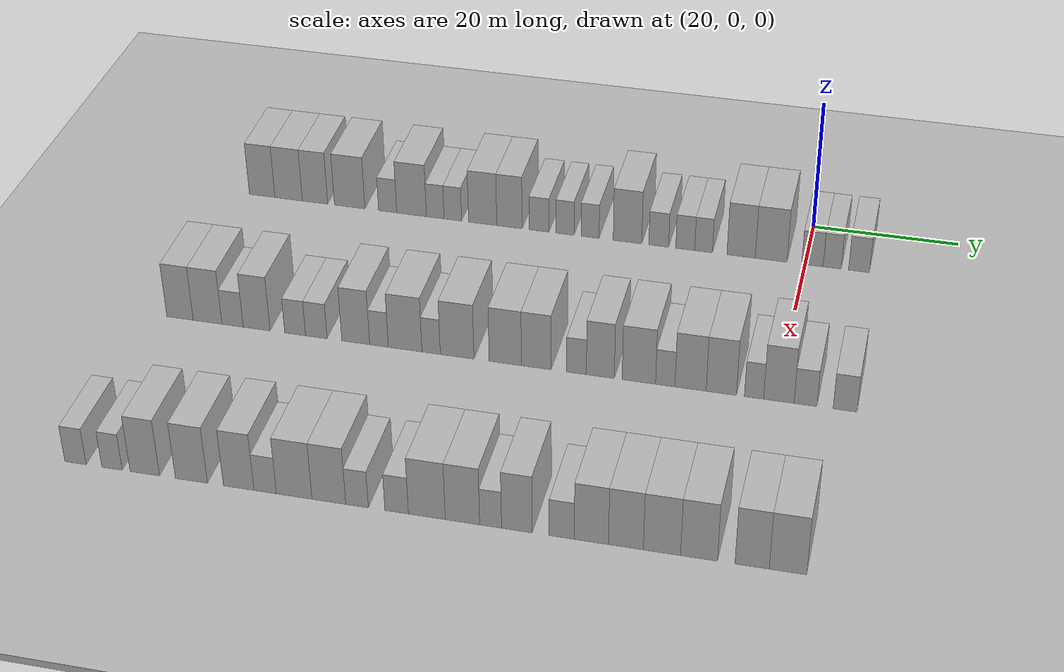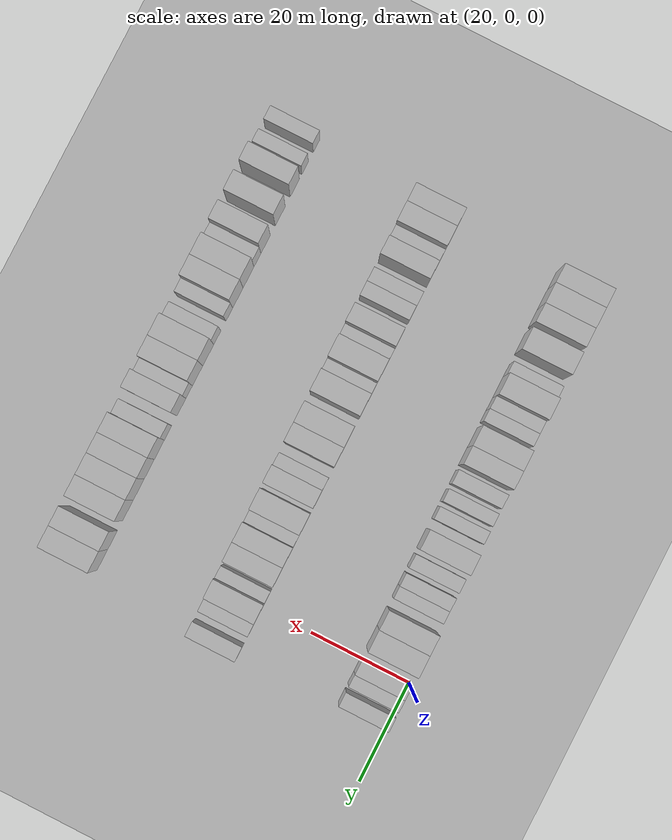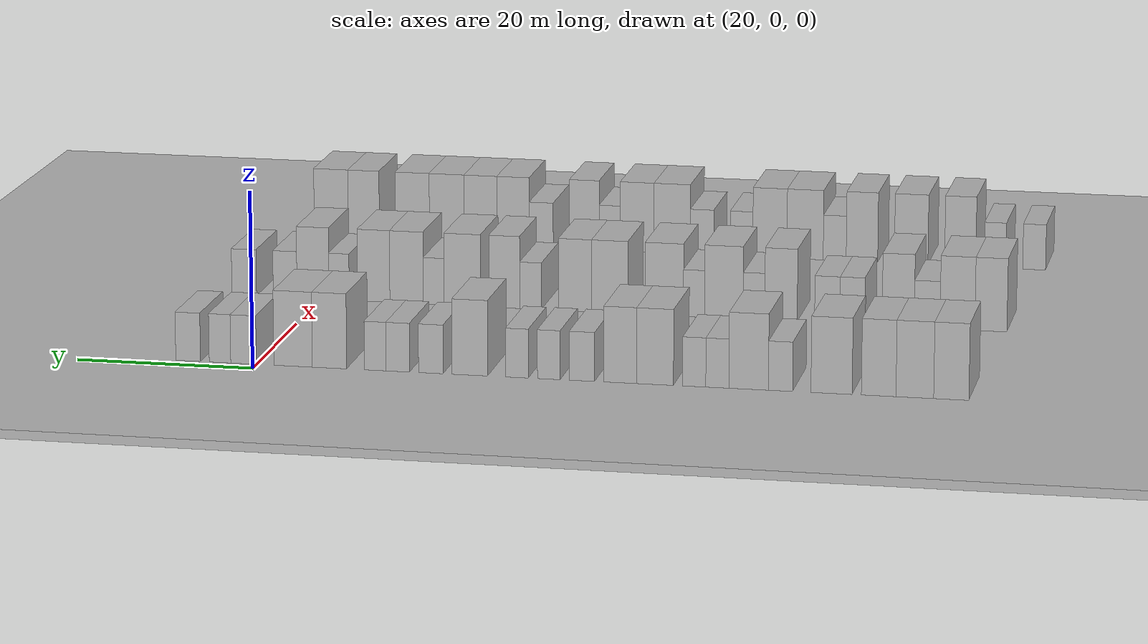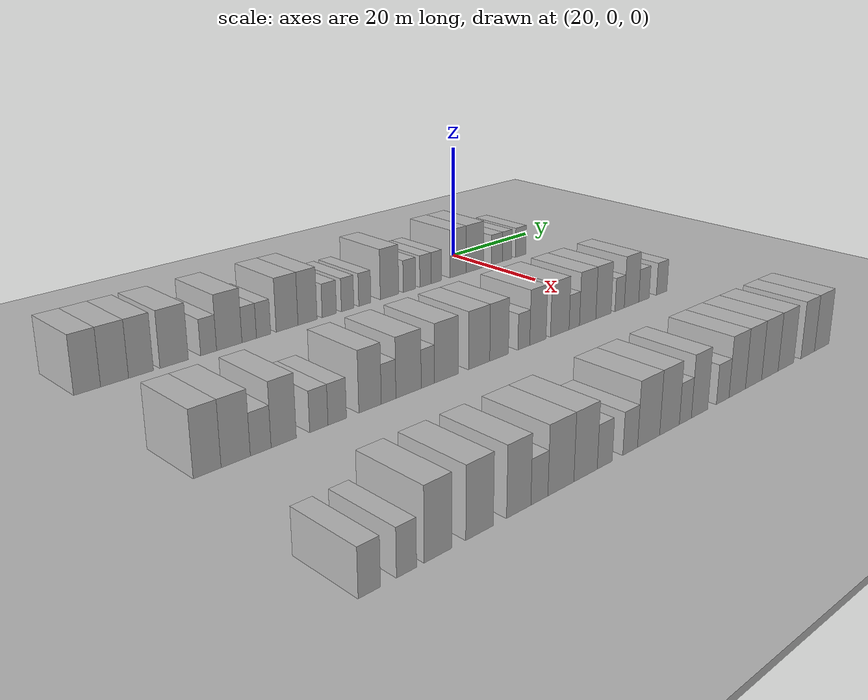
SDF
<sdf version="1.6">
 <world name="default">
  <include><name>ground_plane_1</name><uri>model://HANNAS_ground_plane</uri></include>
  <include>
   <name>ground_plane_2</name>
   <uri>model://HANNAS_ground_plane</uri>
   <pose>100 0 0  0 0 0</pose>
  </include>
  <model name="building_41">
   <static>1</static>
   <pose>25.0000 -77.4432 0 0.000000 0.000000 0.000000</pose>
   <link name="link">
    <pose>0 0 4.50 0 0 0</pose>
    <collision name="collision"><geometry><box><size>10.0000 3.8039 9.0000</size></box></geometry></collision>
    <visual name="visual">
     <cast_shadows>0</cast_shadows>
     <geometry><box><size>10.0000 3.8039 9.0000</size></box></geometry>
     <material>
      <script>
       <uri>model://HANNAS_wall/materials/scripts</uri>
       <uri>model://HANNAS_wall/materials/textures</uri>
       <name>vrc/HANNAS_wall</name>
      </script>
     </material>
    </visual>
   </link>
  </model>
  <model name="building_42">
   <static>1</static>
   <pose>25.0000 -73.4997 0 0.000000 0.000000 0.000000</pose>
   <link name="link">
    <pose>0 0 4.50 0 0 0</pose>
    <collision name="collision"><geometry><box><size>10.0000 4.0831 9.0000</size></box></geometry></collision>
    <visual name="visual">
     <cast_shadows>0</cast_shadows>
     <geometry><box><size>10.0000 4.0831 9.0000</size></box></geometry>
     <material>
      <script>
       <uri>model://HANNAS_wall/materials/scripts</uri>
       <uri>model://HANNAS_wall/materials/textures</uri>
       <name>vrc/HANNAS_wall</name>
      </script>
     </material>
    </visual>
   </link>
  </model>
  <model name="building_43">
   <static>1</static>
   <pose>25.0000 -69.5776 0 0.000000 0.000000 0.000000</pose>
   <link name="link">
    <pose>0 0 4.50 0 0 0</pose>
    <collision name="collision"><geometry><box><size>10.0000 3.7611 9.0000</size></box></geometry></collision>
    <visual name="visual">
     <cast_shadows>0</cast_shadows>
     <geometry><box><size>10.0000 3.7611 9.0000</size></box></geometry>
     <material>
      <script>
       <uri>model://HANNAS_wall/materials/scripts</uri>
       <uri>model://HANNAS_wall/materials/textures</uri>
       <name>vrc/HANNAS_wall</name>
      </script>
     </material>
    </visual>
   </link>
  </model>
  <model name="building_44">
   <static>1</static>
   <pose>25.0000 -64.4506 0 0.000000 0.000000 0.000000</pose>
   <link name="link">
    <pose>0 0 4.50 0 0 0</pose>
    <collision name="collision"><geometry><box><size>10.0000 4.4929 9.0000</size></box></geometry></collision>
    <visual name="visual">
     <cast_shadows>0</cast_shadows>
     <geometry><box><size>10.0000 4.4929 9.0000</size></box></geometry>
     <material>
      <script>
       <uri>model://HANNAS_wall/materials/scripts</uri>
       <uri>model://HANNAS_wall/materials/textures</uri>
       <name>vrc/HANNAS_wall</name>
      </script>
     </material>
    </visual>
   </link>
  </model>
  <model name="building_45">
   <static>1</static>
   <pose>25.0000 -58.8808 0 0.000000 0.000000 0.000000</pose>
   <link name="link">
    <pose>0 0 3.00 0 0 0</pose>
    <collision name="collision"><geometry><box><size>10.0000 2.6467 6.0000</size></box></geometry></collision>
    <visual name="visual">
     <cast_shadows>0</cast_shadows>
     <geometry><box><size>10.0000 2.6467 6.0000</size></box></geometry>
     <material>
      <script>
       <uri>model://HANNAS_wall/materials/scripts</uri>
       <uri>model://HANNAS_wall/materials/textures</uri>
       <name>vrc/HANNAS_wall</name>
      </script>
     </material>
    </visual>
   </link>
  </model>
  <model name="building_46">
   <static>1</static>
   <pose>25.0000 -55.3931 0 0.000000 0.000000 0.000000</pose>
   <link name="link">
    <pose>0 0 4.50 0 0 0</pose>
    <collision name="collision"><geometry><box><size>10.0000 4.3287 9.0000</size></box></geometry></collision>
    <visual name="visual">
     <cast_shadows>0</cast_shadows>
     <geometry><box><size>10.0000 4.3287 9.0000</size></box></geometry>
     <material>
      <script>
       <uri>model://HANNAS_wall/materials/scripts</uri>
       <uri>model://HANNAS_wall/materials/textures</uri>
       <name>vrc/HANNAS_wall</name>
      </script>
     </material>
    </visual>
   </link>
  </model>
  <model name="building_47">
   <static>1</static>
   <pose>25.0000 -51.9567 0 0.000000 0.000000 0.000000</pose>
   <link name="link">
    <pose>0 0 3.00 0 0 0</pose>
    <collision name="collision"><geometry><box><size>10.0000 2.5442 6.0000</size></box></geometry></collision>
    <visual name="visual">
     <cast_shadows>0</cast_shadows>
     <geometry><box><size>10.0000 2.5442 6.0000</size></box></geometry>
     <material>
      <script>
       <uri>model://HANNAS_wall/materials/scripts</uri>
       <uri>model://HANNAS_wall/materials/textures</uri>
       <name>vrc/HANNAS_wall</name>
      </script>
     </material>
    </visual>
   </link>
  </model>
  <model name="building_48">
   <static>1</static>
   <pose>25.0000 -49.4070 0 0.000000 0.000000 0.000000</pose>
   <link name="link">
    <pose>0 0 3.00 0 0 0</pose>
    <collision name="collision"><geometry><box><size>10.0000 2.5553 6.0000</size></box></geometry></collision>
    <visual name="visual">
     <cast_shadows>0</cast_shadows>
     <geometry><box><size>10.0000 2.5553 6.0000</size></box></geometry>
     <material>
      <script>
       <uri>model://HANNAS_wall/materials/scripts</uri>
       <uri>model://HANNAS_wall/materials/textures</uri>
       <name>vrc/HANNAS_wall</name>
      </script>
     </material>
    </visual>
   </link>
  </model>
  <model name="building_49">
   <static>1</static>
   <pose>25.0000 -45.0971 0 0.000000 0.000000 0.000000</pose>
   <link name="link">
    <pose>0 0 4.50 0 0 0</pose>
    <collision name="collision"><geometry><box><size>10.0000 4.0646 9.0000</size></box></geometry></collision>
    <visual name="visual">
     <cast_shadows>0</cast_shadows>
     <geometry><box><size>10.0000 4.0646 9.0000</size></box></geometry>
     <material>
      <script>
       <uri>model://HANNAS_wall/materials/scripts</uri>
       <uri>model://HANNAS_wall/materials/textures</uri>
       <name>vrc/HANNAS_wall</name>
      </script>
     </material>
    </visual>
   </link>
  </model>
  <model name="building_50">
   <static>1</static>
   <pose>25.0000 -41.2417 0 0.000000 0.000000 0.000000</pose>
   <link name="link">
    <pose>0 0 4.50 0 0 0</pose>
    <collision name="collision"><geometry><box><size>10.0000 3.6462 9.0000</size></box></geometry></collision>
    <visual name="visual">
     <cast_shadows>0</cast_shadows>
     <geometry><box><size>10.0000 3.6462 9.0000</size></box></geometry>
     <material>
      <script>
       <uri>model://HANNAS_wall/materials/scripts</uri>
       <uri>model://HANNAS_wall/materials/textures</uri>
       <name>vrc/HANNAS_wall</name>
      </script>
     </material>
    </visual>
   </link>
  </model>
  <model name="building_51">
   <static>1</static>
   <pose>25.0000 -37.0096 0 0.000000 0.000000 0.000000</pose>
   <link name="link">
    <pose>0 0 3.00 0 0 0</pose>
    <collision name="collision"><geometry><box><size>10.0000 2.8180 6.0000</size></box></geometry></collision>
    <visual name="visual">
     <cast_shadows>0</cast_shadows>
     <geometry><box><size>10.0000 2.8180 6.0000</size></box></geometry>
     <material>
      <script>
       <uri>model://HANNAS_wall/materials/scripts</uri>
       <uri>model://HANNAS_wall/materials/textures</uri>
       <name>vrc/HANNAS_wall</name>
      </script>
     </material>
    </visual>
   </link>
  </model>
  <model name="building_52">
   <static>1</static>
   <pose>25.0000 -33.3293 0 0.000000 0.000000 0.000000</pose>
   <link name="link">
    <pose>0 0 3.00 0 0 0</pose>
    <collision name="collision"><geometry><box><size>10.0000 2.5426 6.0000</size></box></geometry></collision>
    <visual name="visual">
     <cast_shadows>0</cast_shadows>
     <geometry><box><size>10.0000 2.5426 6.0000</size></box></geometry>
     <material>
      <script>
       <uri>model://HANNAS_wall/materials/scripts</uri>
       <uri>model://HANNAS_wall/materials/textures</uri>
       <name>vrc/HANNAS_wall</name>
      </script>
     </material>
    </visual>
   </link>
  </model>
  <model name="building_53">
   <static>1</static>
   <pose>25.0000 -29.7868 0 0.000000 0.000000 0.000000</pose>
   <link name="link">
    <pose>0 0 3.00 0 0 0</pose>
    <collision name="collision"><geometry><box><size>10.0000 2.5425 6.0000</size></box></geometry></collision>
    <visual name="visual">
     <cast_shadows>0</cast_shadows>
     <geometry><box><size>10.0000 2.5425 6.0000</size></box></geometry>
     <material>
      <script>
       <uri>model://HANNAS_wall/materials/scripts</uri>
       <uri>model://HANNAS_wall/materials/textures</uri>
       <name>vrc/HANNAS_wall</name>
      </script>
     </material>
    </visual>
   </link>
  </model>
  <model name="building_54">
   <static>1</static>
   <pose>25.0000 -24.5192 0 0.000000 0.000000 0.000000</pose>
   <link name="link">
    <pose>0 0 4.50 0 0 0</pose>
    <collision name="collision"><geometry><box><size>10.0000 3.9926 9.0000</size></box></geometry></collision>
    <visual name="visual">
     <cast_shadows>0</cast_shadows>
     <geometry><box><size>10.0000 3.9926 9.0000</size></box></geometry>
     <material>
      <script>
       <uri>model://HANNAS_wall/materials/scripts</uri>
       <uri>model://HANNAS_wall/materials/textures</uri>
       <name>vrc/HANNAS_wall</name>
      </script>
     </material>
    </visual>
   </link>
  </model>
  <model name="building_55">
   <static>1</static>
   <pose>25.0000 -20.1433 0 0.000000 0.000000 0.000000</pose>
   <link name="link">
    <pose>0 0 3.00 0 0 0</pose>
    <collision name="collision"><geometry><box><size>10.0000 2.7592 6.0000</size></box></geometry></collision>
    <visual name="visual">
     <cast_shadows>0</cast_shadows>
     <geometry><box><size>10.0000 2.7592 6.0000</size></box></geometry>
     <material>
      <script>
       <uri>model://HANNAS_wall/materials/scripts</uri>
       <uri>model://HANNAS_wall/materials/textures</uri>
       <name>vrc/HANNAS_wall</name>
      </script>
     </material>
    </visual>
   </link>
  </model>
  <model name="building_56">
   <static>1</static>
   <pose>25.0000 -16.4435 0 0.000000 0.000000 0.000000</pose>
   <link name="link">
    <pose>0 0 3.00 0 0 0</pose>
    <collision name="collision"><geometry><box><size>10.0000 2.6403 6.0000</size></box></geometry></collision>
    <visual name="visual">
     <cast_shadows>0</cast_shadows>
     <geometry><box><size>10.0000 2.6403 6.0000</size></box></geometry>
     <material>
      <script>
       <uri>model://HANNAS_wall/materials/scripts</uri>
       <uri>model://HANNAS_wall/materials/textures</uri>
       <name>vrc/HANNAS_wall</name>
      </script>
     </material>
    </visual>
   </link>
  </model>
  <model name="building_57">
   <static>1</static>
   <pose>25.0000 -13.8980 0 0.000000 0.000000 0.000000</pose>
   <link name="link">
    <pose>0 0 3.00 0 0 0</pose>
    <collision name="collision"><geometry><box><size>10.0000 2.4508 6.0000</size></box></geometry></collision>
    <visual name="visual">
     <cast_shadows>0</cast_shadows>
     <geometry><box><size>10.0000 2.4508 6.0000</size></box></geometry>
     <material>
      <script>
       <uri>model://HANNAS_wall/materials/scripts</uri>
       <uri>model://HANNAS_wall/materials/textures</uri>
       <name>vrc/HANNAS_wall</name>
      </script>
     </material>
    </visual>
   </link>
  </model>
  <model name="building_58">
   <static>1</static>
   <pose>25.0000 -8.7240 0 0.000000 0.000000 0.000000</pose>
   <link name="link">
    <pose>0 0 4.50 0 0 0</pose>
    <collision name="collision"><geometry><box><size>10.0000 3.8971 9.0000</size></box></geometry></collision>
    <visual name="visual">
     <cast_shadows>0</cast_shadows>
     <geometry><box><size>10.0000 3.8971 9.0000</size></box></geometry>
     <material>
      <script>
       <uri>model://HANNAS_wall/materials/scripts</uri>
       <uri>model://HANNAS_wall/materials/textures</uri>
       <name>vrc/HANNAS_wall</name>
      </script>
     </material>
    </visual>
   </link>
  </model>
  <model name="building_59">
   <static>1</static>
   <pose>25.0000 -4.6005 0 0.000000 0.000000 0.000000</pose>
   <link name="link">
    <pose>0 0 4.50 0 0 0</pose>
    <collision name="collision"><geometry><box><size>10.0000 4.3501 9.0000</size></box></geometry></collision>
    <visual name="visual">
     <cast_shadows>0</cast_shadows>
     <geometry><box><size>10.0000 4.3501 9.0000</size></box></geometry>
     <material>
      <script>
       <uri>model://HANNAS_wall/materials/scripts</uri>
       <uri>model://HANNAS_wall/materials/textures</uri>
       <name>vrc/HANNAS_wall</name>
      </script>
     </material>
    </visual>
   </link>
  </model>
  <model name="building_60">
   <static>1</static>
   <pose>25.0000 1.0293 0 0.000000 0.000000 0.000000</pose>
   <link name="link">
    <pose>0 0 3.00 0 0 0</pose>
    <collision name="collision"><geometry><box><size>10.0000 2.9094 6.0000</size></box></geometry></collision>
    <visual name="visual">
     <cast_shadows>0</cast_shadows>
     <geometry><box><size>10.0000 2.9094 6.0000</size></box></geometry>
     <material>
      <script>
       <uri>model://HANNAS_wall/materials/scripts</uri>
       <uri>model://HANNAS_wall/materials/textures</uri>
       <name>vrc/HANNAS_wall</name>
      </script>
     </material>
    </visual>
   </link>
  </model>
  <model name="building_61">
   <static>1</static>
   <pose>25.0000 3.7083 0 0.000000 0.000000 0.000000</pose>
   <link name="link">
    <pose>0 0 3.00 0 0 0</pose>
    <collision name="collision"><geometry><box><size>10.0000 2.4486 6.0000</size></box></geometry></collision>
    <visual name="visual">
     <cast_shadows>0</cast_shadows>
     <geometry><box><size>10.0000 2.4486 6.0000</size></box></geometry>
     <material>
      <script>
       <uri>model://HANNAS_wall/materials/scripts</uri>
       <uri>model://HANNAS_wall/materials/textures</uri>
       <name>vrc/HANNAS_wall</name>
      </script>
     </material>
    </visual>
   </link>
  </model>
  <model name="building_62">
   <static>1</static>
   <pose>25.0000 7.3436 0 0.000000 0.000000 0.000000</pose>
   <link name="link">
    <pose>0 0 3.00 0 0 0</pose>
    <collision name="collision"><geometry><box><size>10.0000 2.8220 6.0000</size></box></geometry></collision>
    <visual name="visual">
     <cast_shadows>0</cast_shadows>
     <geometry><box><size>10.0000 2.8220 6.0000</size></box></geometry>
     <material>
      <script>
       <uri>model://HANNAS_wall/materials/scripts</uri>
       <uri>model://HANNAS_wall/materials/textures</uri>
       <name>vrc/HANNAS_wall</name>
      </script>
     </material>
    </visual>
   </link>
  </model>
  <model name="building_178">
   <static>1</static>
   <pose>55.0000 -78.3337 0 0.000000 0.000000 0.000000</pose>
   <link name="link">
    <pose>0 0 4.50 0 0 0</pose>
    <collision name="collision"><geometry><box><size>10.0000 3.6450 9.0000</size></box></geometry></collision>
    <visual name="visual">
     <cast_shadows>0</cast_shadows>
     <geometry><box><size>10.0000 3.6450 9.0000</size></box></geometry>
     <material>
      <script>
       <uri>model://HANNAS_wall/materials/scripts</uri>
       <uri>model://HANNAS_wall/materials/textures</uri>
       <name>vrc/HANNAS_wall</name>
      </script>
     </material>
    </visual>
   </link>
  </model>
  <model name="building_179">
   <static>1</static>
   <pose>55.0000 -74.5287 0 0.000000 0.000000 0.000000</pose>
   <link name="link">
    <pose>0 0 4.50 0 0 0</pose>
    <collision name="collision"><geometry><box><size>10.0000 3.9650 9.0000</size></box></geometry></collision>
    <visual name="visual">
     <cast_shadows>0</cast_shadows>
     <geometry><box><size>10.0000 3.9650 9.0000</size></box></geometry>
     <material>
      <script>
       <uri>model://HANNAS_wall/materials/scripts</uri>
       <uri>model://HANNAS_wall/materials/textures</uri>
       <name>vrc/HANNAS_wall</name>
      </script>
     </material>
    </visual>
   </link>
  </model>
  <model name="building_180">
   <static>1</static>
   <pose>55.0000 -71.0784 0 0.000000 0.000000 0.000000</pose>
   <link name="link">
    <pose>0 0 3.00 0 0 0</pose>
    <collision name="collision"><geometry><box><size>10.0000 2.9356 6.0000</size></box></geometry></collision>
    <visual name="visual">
     <cast_shadows>0</cast_shadows>
     <geometry><box><size>10.0000 2.9356 6.0000</size></box></geometry>
     <material>
      <script>
       <uri>model://HANNAS_wall/materials/scripts</uri>
       <uri>model://HANNAS_wall/materials/textures</uri>
       <name>vrc/HANNAS_wall</name>
      </script>
     </material>
    </visual>
   </link>
  </model>
  <model name="building_181">
   <static>1</static>
   <pose>55.0000 -67.7766 0 0.000000 0.000000 0.000000</pose>
   <link name="link">
    <pose>0 0 4.50 0 0 0</pose>
    <collision name="collision"><geometry><box><size>10.0000 3.6681 9.0000</size></box></geometry></collision>
    <visual name="visual">
     <cast_shadows>0</cast_shadows>
     <geometry><box><size>10.0000 3.6681 9.0000</size></box></geometry>
     <material>
      <script>
       <uri>model://HANNAS_wall/materials/scripts</uri>
       <uri>model://HANNAS_wall/materials/textures</uri>
       <name>vrc/HANNAS_wall</name>
      </script>
     </material>
    </visual>
   </link>
  </model>
  <model name="building_182">
   <static>1</static>
   <pose>55.0000 -62.5302 0 0.000000 0.000000 0.000000</pose>
   <link name="link">
    <pose>0 0 3.00 0 0 0</pose>
    <collision name="collision"><geometry><box><size>10.0000 2.8247 6.0000</size></box></geometry></collision>
    <visual name="visual">
     <cast_shadows>0</cast_shadows>
     <geometry><box><size>10.0000 2.8247 6.0000</size></box></geometry>
     <material>
      <script>
       <uri>model://HANNAS_wall/materials/scripts</uri>
       <uri>model://HANNAS_wall/materials/textures</uri>
       <name>vrc/HANNAS_wall</name>
      </script>
     </material>
    </visual>
   </link>
  </model>
  <model name="building_183">
   <static>1</static>
   <pose>55.0000 -59.6633 0 0.000000 0.000000 0.000000</pose>
   <link name="link">
    <pose>0 0 3.00 0 0 0</pose>
    <collision name="collision"><geometry><box><size>10.0000 2.9091 6.0000</size></box></geometry></collision>
    <visual name="visual">
     <cast_shadows>0</cast_shadows>
     <geometry><box><size>10.0000 2.9091 6.0000</size></box></geometry>
     <material>
      <script>
       <uri>model://HANNAS_wall/materials/scripts</uri>
       <uri>model://HANNAS_wall/materials/textures</uri>
       <name>vrc/HANNAS_wall</name>
      </script>
     </material>
    </visual>
   </link>
  </model>
  <model name="building_184">
   <static>1</static>
   <pose>55.0000 -54.3398 0 0.000000 0.000000 0.000000</pose>
   <link name="link">
    <pose>0 0 4.50 0 0 0</pose>
    <collision name="collision"><geometry><box><size>10.0000 3.7379 9.0000</size></box></geometry></collision>
    <visual name="visual">
     <cast_shadows>0</cast_shadows>
     <geometry><box><size>10.0000 3.7379 9.0000</size></box></geometry>
     <material>
      <script>
       <uri>model://HANNAS_wall/materials/scripts</uri>
       <uri>model://HANNAS_wall/materials/textures</uri>
       <name>vrc/HANNAS_wall</name>
      </script>
     </material>
    </visual>
   </link>
  </model>
  <model name="building_185">
   <static>1</static>
   <pose>55.0000 -51.2198 0 0.000000 0.000000 0.000000</pose>
   <link name="link">
    <pose>0 0 3.00 0 0 0</pose>
    <collision name="collision"><geometry><box><size>10.0000 2.5020 6.0000</size></box></geometry></collision>
    <visual name="visual">
     <cast_shadows>0</cast_shadows>
     <geometry><box><size>10.0000 2.5020 6.0000</size></box></geometry>
     <material>
      <script>
       <uri>model://HANNAS_wall/materials/scripts</uri>
       <uri>model://HANNAS_wall/materials/textures</uri>
       <name>vrc/HANNAS_wall</name>
      </script>
     </material>
    </visual>
   </link>
  </model>
  <model name="building_186">
   <static>1</static>
   <pose>55.0000 -47.7339 0 0.000000 0.000000 0.000000</pose>
   <link name="link">
    <pose>0 0 4.50 0 0 0</pose>
    <collision name="collision"><geometry><box><size>10.0000 4.4698 9.0000</size></box></geometry></collision>
    <visual name="visual">
     <cast_shadows>0</cast_shadows>
     <geometry><box><size>10.0000 4.4698 9.0000</size></box></geometry>
     <material>
      <script>
       <uri>model://HANNAS_wall/materials/scripts</uri>
       <uri>model://HANNAS_wall/materials/textures</uri>
       <name>vrc/HANNAS_wall</name>
      </script>
     </material>
    </visual>
   </link>
  </model>
  <model name="building_187">
   <static>1</static>
   <pose>55.0000 -44.2805 0 0.000000 0.000000 0.000000</pose>
   <link name="link">
    <pose>0 0 3.00 0 0 0</pose>
    <collision name="collision"><geometry><box><size>10.0000 2.4369 6.0000</size></box></geometry></collision>
    <visual name="visual">
     <cast_shadows>0</cast_shadows>
     <geometry><box><size>10.0000 2.4369 6.0000</size></box></geometry>
     <material>
      <script>
       <uri>model://HANNAS_wall/materials/scripts</uri>
       <uri>model://HANNAS_wall/materials/textures</uri>
       <name>vrc/HANNAS_wall</name>
      </script>
     </material>
    </visual>
   </link>
  </model>
  <model name="building_188">
   <static>1</static>
   <pose>55.0000 -40.8346 0 0.000000 0.000000 0.000000</pose>
   <link name="link">
    <pose>0 0 4.50 0 0 0</pose>
    <collision name="collision"><geometry><box><size>10.0000 4.4549 9.0000</size></box></geometry></collision>
    <visual name="visual">
     <cast_shadows>0</cast_shadows>
     <geometry><box><size>10.0000 4.4549 9.0000</size></box></geometry>
     <material>
      <script>
       <uri>model://HANNAS_wall/materials/scripts</uri>
       <uri>model://HANNAS_wall/materials/textures</uri>
       <name>vrc/HANNAS_wall</name>
      </script>
     </material>
    </visual>
   </link>
  </model>
  <model name="building_189">
   <static>1</static>
   <pose>55.0000 -34.4907 0 0.000000 0.000000 0.000000</pose>
   <link name="link">
    <pose>0 0 4.50 0 0 0</pose>
    <collision name="collision"><geometry><box><size>10.0000 4.2328 9.0000</size></box></geometry></collision>
    <visual name="visual">
     <cast_shadows>0</cast_shadows>
     <geometry><box><size>10.0000 4.2328 9.0000</size></box></geometry>
     <material>
      <script>
       <uri>model://HANNAS_wall/materials/scripts</uri>
       <uri>model://HANNAS_wall/materials/textures</uri>
       <name>vrc/HANNAS_wall</name>
      </script>
     </material>
    </visual>
   </link>
  </model>
  <model name="building_190">
   <static>1</static>
   <pose>55.0000 -30.4448 0 0.000000 0.000000 0.000000</pose>
   <link name="link">
    <pose>0 0 4.50 0 0 0</pose>
    <collision name="collision"><geometry><box><size>10.0000 3.8591 9.0000</size></box></geometry></collision>
    <visual name="visual">
     <cast_shadows>0</cast_shadows>
     <geometry><box><size>10.0000 3.8591 9.0000</size></box></geometry>
     <material>
      <script>
       <uri>model://HANNAS_wall/materials/scripts</uri>
       <uri>model://HANNAS_wall/materials/textures</uri>
       <name>vrc/HANNAS_wall</name>
      </script>
     </material>
    </visual>
   </link>
  </model>
  <model name="building_191">
   <static>1</static>
   <pose>55.0000 -25.2352 0 0.000000 0.000000 0.000000</pose>
   <link name="link">
    <pose>0 0 3.00 0 0 0</pose>
    <collision name="collision"><geometry><box><size>10.0000 2.5602 6.0000</size></box></geometry></collision>
    <visual name="visual">
     <cast_shadows>0</cast_shadows>
     <geometry><box><size>10.0000 2.5602 6.0000</size></box></geometry>
     <material>
      <script>
       <uri>model://HANNAS_wall/materials/scripts</uri>
       <uri>model://HANNAS_wall/materials/textures</uri>
       <name>vrc/HANNAS_wall</name>
      </script>
     </material>
    </visual>
   </link>
  </model>
  <model name="building_192">
   <static>1</static>
   <pose>55.0000 -22.1537 0 0.000000 0.000000 0.000000</pose>
   <link name="link">
    <pose>0 0 4.50 0 0 0</pose>
    <collision name="collision"><geometry><box><size>10.0000 3.6026 9.0000</size></box></geometry></collision>
    <visual name="visual">
     <cast_shadows>0</cast_shadows>
     <geometry><box><size>10.0000 3.6026 9.0000</size></box></geometry>
     <material>
      <script>
       <uri>model://HANNAS_wall/materials/scripts</uri>
       <uri>model://HANNAS_wall/materials/textures</uri>
       <name>vrc/HANNAS_wall</name>
      </script>
     </material>
    </visual>
   </link>
  </model>
  <model name="building_193">
   <static>1</static>
   <pose>55.0000 -17.2125 0 0.000000 0.000000 0.000000</pose>
   <link name="link">
    <pose>0 0 4.50 0 0 0</pose>
    <collision name="collision"><geometry><box><size>10.0000 4.2799 9.0000</size></box></geometry></collision>
    <visual name="visual">
     <cast_shadows>0</cast_shadows>
     <geometry><box><size>10.0000 4.2799 9.0000</size></box></geometry>
     <material>
      <script>
       <uri>model://HANNAS_wall/materials/scripts</uri>
       <uri>model://HANNAS_wall/materials/textures</uri>
       <name>vrc/HANNAS_wall</name>
      </script>
     </material>
    </visual>
   </link>
  </model>
  <model name="building_194">
   <static>1</static>
   <pose>55.0000 -13.8398 0 0.000000 0.000000 0.000000</pose>
   <link name="link">
    <pose>0 0 3.00 0 0 0</pose>
    <collision name="collision"><geometry><box><size>10.0000 2.4654 6.0000</size></box></geometry></collision>
    <visual name="visual">
     <cast_shadows>0</cast_shadows>
     <geometry><box><size>10.0000 2.4654 6.0000</size></box></geometry>
     <material>
      <script>
       <uri>model://HANNAS_wall/materials/scripts</uri>
       <uri>model://HANNAS_wall/materials/textures</uri>
       <name>vrc/HANNAS_wall</name>
      </script>
     </material>
    </visual>
   </link>
  </model>
  <model name="building_195">
   <static>1</static>
   <pose>55.0000 -10.6246 0 0.000000 0.000000 0.000000</pose>
   <link name="link">
    <pose>0 0 4.50 0 0 0</pose>
    <collision name="collision"><geometry><box><size>10.0000 3.9650 9.0000</size></box></geometry></collision>
    <visual name="visual">
     <cast_shadows>0</cast_shadows>
     <geometry><box><size>10.0000 3.9650 9.0000</size></box></geometry>
     <material>
      <script>
       <uri>model://HANNAS_wall/materials/scripts</uri>
       <uri>model://HANNAS_wall/materials/textures</uri>
       <name>vrc/HANNAS_wall</name>
      </script>
     </material>
    </visual>
   </link>
  </model>
  <model name="building_196">
   <static>1</static>
   <pose>55.0000 -6.7308 0 0.000000 0.000000 0.000000</pose>
   <link name="link">
    <pose>0 0 4.50 0 0 0</pose>
    <collision name="collision"><geometry><box><size>10.0000 3.8226 9.0000</size></box></geometry></collision>
    <visual name="visual">
     <cast_shadows>0</cast_shadows>
     <geometry><box><size>10.0000 3.8226 9.0000</size></box></geometry>
     <material>
      <script>
       <uri>model://HANNAS_wall/materials/scripts</uri>
       <uri>model://HANNAS_wall/materials/textures</uri>
       <name>vrc/HANNAS_wall</name>
      </script>
     </material>
    </visual>
   </link>
  </model>
  <model name="building_197">
   <static>1</static>
   <pose>55.0000 -2.6164 0 0.000000 0.000000 0.000000</pose>
   <link name="link">
    <pose>0 0 3.00 0 0 0</pose>
    <collision name="collision"><geometry><box><size>10.0000 2.4060 6.0000</size></box></geometry></collision>
    <visual name="visual">
     <cast_shadows>0</cast_shadows>
     <geometry><box><size>10.0000 2.4060 6.0000</size></box></geometry>
     <material>
      <script>
       <uri>model://HANNAS_wall/materials/scripts</uri>
       <uri>model://HANNAS_wall/materials/textures</uri>
       <name>vrc/HANNAS_wall</name>
      </script>
     </material>
    </visual>
   </link>
  </model>
  <model name="building_198">
   <static>1</static>
   <pose>55.0000 0.4934 0 0.000000 0.000000 0.000000</pose>
   <link name="link">
    <pose>0 0 4.50 0 0 0</pose>
    <collision name="collision"><geometry><box><size>10.0000 3.8136 9.0000</size></box></geometry></collision>
    <visual name="visual">
     <cast_shadows>0</cast_shadows>
     <geometry><box><size>10.0000 3.8136 9.0000</size></box></geometry>
     <material>
      <script>
       <uri>model://HANNAS_wall/materials/scripts</uri>
       <uri>model://HANNAS_wall/materials/textures</uri>
       <name>vrc/HANNAS_wall</name>
      </script>
     </material>
    </visual>
   </link>
  </model>
  <model name="building_199">
   <static>1</static>
   <pose>55.0000 3.8221 0 0.000000 0.000000 0.000000</pose>
   <link name="link">
    <pose>0 0 3.00 0 0 0</pose>
    <collision name="collision"><geometry><box><size>10.0000 2.8439 6.0000</size></box></geometry></collision>
    <visual name="visual">
     <cast_shadows>0</cast_shadows>
     <geometry><box><size>10.0000 2.8439 6.0000</size></box></geometry>
     <material>
      <script>
       <uri>model://HANNAS_wall/materials/scripts</uri>
       <uri>model://HANNAS_wall/materials/textures</uri>
       <name>vrc/HANNAS_wall</name>
      </script>
     </material>
    </visual>
   </link>
  </model>
  <model name="building_200">
   <static>1</static>
   <pose>55.0000 8.7198 0 0.000000 0.000000 0.000000</pose>
   <link name="link">
    <pose>0 0 3.00 0 0 0</pose>
    <collision name="collision"><geometry><box><size>10.0000 2.9514 6.0000</size></box></geometry></collision>
    <visual name="visual">
     <cast_shadows>0</cast_shadows>
     <geometry><box><size>10.0000 2.9514 6.0000</size></box></geometry>
     <material>
      <script>
       <uri>model://HANNAS_wall/materials/scripts</uri>
       <uri>model://HANNAS_wall/materials/textures</uri>
       <name>vrc/HANNAS_wall</name>
      </script>
     </material>
    </visual>
   </link>
  </model>
  <model name="building_316">
   <static>1</static>
   <pose>85.0000 -80.1036 0 0.000000 0.000000 0.000000</pose>
   <link name="link">
    <pose>0 0 3.00 0 0 0</pose>
    <collision name="collision"><geometry><box><size>10.0000 2.7170 6.0000</size></box></geometry></collision>
    <visual name="visual">
     <cast_shadows>0</cast_shadows>
     <geometry><box><size>10.0000 2.7170 6.0000</size></box></geometry>
     <material>
      <script>
       <uri>model://HANNAS_wall/materials/scripts</uri>
       <uri>model://HANNAS_wall/materials/textures</uri>
       <name>vrc/HANNAS_wall</name>
      </script>
     </material>
    </visual>
   </link>
  </model>
  <model name="building_317">
   <static>1</static>
   <pose>85.0000 -75.4486 0 0.000000 0.000000 0.000000</pose>
   <link name="link">
    <pose>0 0 3.00 0 0 0</pose>
    <collision name="collision"><geometry><box><size>10.0000 2.5929 6.0000</size></box></geometry></collision>
    <visual name="visual">
     <cast_shadows>0</cast_shadows>
     <geometry><box><size>10.0000 2.5929 6.0000</size></box></geometry>
     <material>
      <script>
       <uri>model://HANNAS_wall/materials/scripts</uri>
       <uri>model://HANNAS_wall/materials/textures</uri>
       <name>vrc/HANNAS_wall</name>
      </script>
     </material>
    </visual>
   </link>
  </model>
  <model name="building_318">
   <static>1</static>
   <pose>85.0000 -71.2923 0 0.000000 0.000000 0.000000</pose>
   <link name="link">
    <pose>0 0 4.50 0 0 0</pose>
    <collision name="collision"><geometry><box><size>10.0000 3.7197 9.0000</size></box></geometry></collision>
    <visual name="visual">
     <cast_shadows>0</cast_shadows>
     <geometry><box><size>10.0000 3.7197 9.0000</size></box></geometry>
     <material>
      <script>
       <uri>model://HANNAS_wall/materials/scripts</uri>
       <uri>model://HANNAS_wall/materials/textures</uri>
       <name>vrc/HANNAS_wall</name>
      </script>
     </material>
    </visual>
   </link>
  </model>
  <model name="building_319">
   <static>1</static>
   <pose>85.0000 -65.4238 0 0.000000 0.000000 0.000000</pose>
   <link name="link">
    <pose>0 0 4.50 0 0 0</pose>
    <collision name="collision"><geometry><box><size>10.0000 4.0173 9.0000</size></box></geometry></collision>
    <visual name="visual">
     <cast_shadows>0</cast_shadows>
     <geometry><box><size>10.0000 4.0173 9.0000</size></box></geometry>
     <material>
      <script>
       <uri>model://HANNAS_wall/materials/scripts</uri>
       <uri>model://HANNAS_wall/materials/textures</uri>
       <name>vrc/HANNAS_wall</name>
      </script>
     </material>
    </visual>
   </link>
  </model>
  <model name="building_320">
   <static>1</static>
   <pose>85.0000 -59.5183 0 0.000000 0.000000 0.000000</pose>
   <link name="link">
    <pose>0 0 4.50 0 0 0</pose>
    <collision name="collision"><geometry><box><size>10.0000 3.7936 9.0000</size></box></geometry></collision>
    <visual name="visual">
     <cast_shadows>0</cast_shadows>
     <geometry><box><size>10.0000 3.7936 9.0000</size></box></geometry>
     <material>
      <script>
       <uri>model://HANNAS_wall/materials/scripts</uri>
       <uri>model://HANNAS_wall/materials/textures</uri>
       <name>vrc/HANNAS_wall</name>
      </script>
     </material>
    </visual>
   </link>
  </model>
  <model name="building_321">
   <static>1</static>
   <pose>85.0000 -56.2372 0 0.000000 0.000000 0.000000</pose>
   <link name="link">
    <pose>0 0 3.00 0 0 0</pose>
    <collision name="collision"><geometry><box><size>10.0000 2.7686 6.0000</size></box></geometry></collision>
    <visual name="visual">
     <cast_shadows>0</cast_shadows>
     <geometry><box><size>10.0000 2.7686 6.0000</size></box></geometry>
     <material>
      <script>
       <uri>model://HANNAS_wall/materials/scripts</uri>
       <uri>model://HANNAS_wall/materials/textures</uri>
       <name>vrc/HANNAS_wall</name>
      </script>
     </material>
    </visual>
   </link>
  </model>
  <model name="building_322">
   <static>1</static>
   <pose>85.0000 -52.6608 0 0.000000 0.000000 0.000000</pose>
   <link name="link">
    <pose>0 0 4.50 0 0 0</pose>
    <collision name="collision"><geometry><box><size>10.0000 4.3842 9.0000</size></box></geometry></collision>
    <visual name="visual">
     <cast_shadows>0</cast_shadows>
     <geometry><box><size>10.0000 4.3842 9.0000</size></box></geometry>
     <material>
      <script>
       <uri>model://HANNAS_wall/materials/scripts</uri>
       <uri>model://HANNAS_wall/materials/textures</uri>
       <name>vrc/HANNAS_wall</name>
      </script>
     </material>
    </visual>
   </link>
  </model>
  <model name="building_323">
   <static>1</static>
   <pose>85.0000 -48.4005 0 0.000000 0.000000 0.000000</pose>
   <link name="link">
    <pose>0 0 4.50 0 0 0</pose>
    <collision name="collision"><geometry><box><size>10.0000 4.1365 9.0000</size></box></geometry></collision>
    <visual name="visual">
     <cast_shadows>0</cast_shadows>
     <geometry><box><size>10.0000 4.1365 9.0000</size></box></geometry>
     <material>
      <script>
       <uri>model://HANNAS_wall/materials/scripts</uri>
       <uri>model://HANNAS_wall/materials/textures</uri>
       <name>vrc/HANNAS_wall</name>
      </script>
     </material>
    </visual>
   </link>
  </model>
  <model name="building_324">
   <static>1</static>
   <pose>85.0000 -44.9564 0 0.000000 0.000000 0.000000</pose>
   <link name="link">
    <pose>0 0 3.00 0 0 0</pose>
    <collision name="collision"><geometry><box><size>10.0000 2.7516 6.0000</size></box></geometry></collision>
    <visual name="visual">
     <cast_shadows>0</cast_shadows>
     <geometry><box><size>10.0000 2.7516 6.0000</size></box></geometry>
     <material>
      <script>
       <uri>model://HANNAS_wall/materials/scripts</uri>
       <uri>model://HANNAS_wall/materials/textures</uri>
       <name>vrc/HANNAS_wall</name>
      </script>
     </material>
    </visual>
   </link>
  </model>
  <model name="building_325">
   <static>1</static>
   <pose>85.0000 -40.1604 0 0.000000 0.000000 0.000000</pose>
   <link name="link">
    <pose>0 0 3.00 0 0 0</pose>
    <collision name="collision"><geometry><box><size>10.0000 2.8404 6.0000</size></box></geometry></collision>
    <visual name="visual">
     <cast_shadows>0</cast_shadows>
     <geometry><box><size>10.0000 2.8404 6.0000</size></box></geometry>
     <material>
      <script>
       <uri>model://HANNAS_wall/materials/scripts</uri>
       <uri>model://HANNAS_wall/materials/textures</uri>
       <name>vrc/HANNAS_wall</name>
      </script>
     </material>
    </visual>
   </link>
  </model>
  <model name="building_326">
   <static>1</static>
   <pose>85.0000 -36.5231 0 0.000000 0.000000 0.000000</pose>
   <link name="link">
    <pose>0 0 4.50 0 0 0</pose>
    <collision name="collision"><geometry><box><size>10.0000 4.4340 9.0000</size></box></geometry></collision>
    <visual name="visual">
     <cast_shadows>0</cast_shadows>
     <geometry><box><size>10.0000 4.4340 9.0000</size></box></geometry>
     <material>
      <script>
       <uri>model://HANNAS_wall/materials/scripts</uri>
       <uri>model://HANNAS_wall/materials/textures</uri>
       <name>vrc/HANNAS_wall</name>
      </script>
     </material>
    </visual>
   </link>
  </model>
  <model name="building_327">
   <static>1</static>
   <pose>85.0000 -32.2514 0 0.000000 0.000000 0.000000</pose>
   <link name="link">
    <pose>0 0 4.50 0 0 0</pose>
    <collision name="collision"><geometry><box><size>10.0000 4.1094 9.0000</size></box></geometry></collision>
    <visual name="visual">
     <cast_shadows>0</cast_shadows>
     <geometry><box><size>10.0000 4.1094 9.0000</size></box></geometry>
     <material>
      <script>
       <uri>model://HANNAS_wall/materials/scripts</uri>
       <uri>model://HANNAS_wall/materials/textures</uri>
       <name>vrc/HANNAS_wall</name>
      </script>
     </material>
    </visual>
   </link>
  </model>
  <model name="building_328">
   <static>1</static>
   <pose>85.0000 -28.8954 0 0.000000 0.000000 0.000000</pose>
   <link name="link">
    <pose>0 0 3.00 0 0 0</pose>
    <collision name="collision"><geometry><box><size>10.0000 2.6025 6.0000</size></box></geometry></collision>
    <visual name="visual">
     <cast_shadows>0</cast_shadows>
     <geometry><box><size>10.0000 2.6025 6.0000</size></box></geometry>
     <material>
      <script>
       <uri>model://HANNAS_wall/materials/scripts</uri>
       <uri>model://HANNAS_wall/materials/textures</uri>
       <name>vrc/HANNAS_wall</name>
      </script>
     </material>
    </visual>
   </link>
  </model>
  <model name="building_329">
   <static>1</static>
   <pose>85.0000 -25.7783 0 0.000000 0.000000 0.000000</pose>
   <link name="link">
    <pose>0 0 4.50 0 0 0</pose>
    <collision name="collision"><geometry><box><size>10.0000 3.6318 9.0000</size></box></geometry></collision>
    <visual name="visual">
     <cast_shadows>0</cast_shadows>
     <geometry><box><size>10.0000 3.6318 9.0000</size></box></geometry>
     <material>
      <script>
       <uri>model://HANNAS_wall/materials/scripts</uri>
       <uri>model://HANNAS_wall/materials/textures</uri>
       <name>vrc/HANNAS_wall</name>
      </script>
     </material>
    </visual>
   </link>
  </model>
  <model name="building_330">
   <static>1</static>
   <pose>85.0000 -20.4874 0 0.000000 0.000000 0.000000</pose>
   <link name="link">
    <pose>0 0 3.00 0 0 0</pose>
    <collision name="collision"><geometry><box><size>10.0000 2.9501 6.0000</size></box></geometry></collision>
    <visual name="visual">
     <cast_shadows>0</cast_shadows>
     <geometry><box><size>10.0000 2.9501 6.0000</size></box></geometry>
     <material>
      <script>
       <uri>model://HANNAS_wall/materials/scripts</uri>
       <uri>model://HANNAS_wall/materials/textures</uri>
       <name>vrc/HANNAS_wall</name>
      </script>
     </material>
    </visual>
   </link>
  </model>
  <model name="building_331">
   <static>1</static>
   <pose>85.0000 -17.0180 0 0.000000 0.000000 0.000000</pose>
   <link name="link">
    <pose>0 0 4.50 0 0 0</pose>
    <collision name="collision"><geometry><box><size>10.0000 3.9886 9.0000</size></box></geometry></collision>
    <visual name="visual">
     <cast_shadows>0</cast_shadows>
     <geometry><box><size>10.0000 3.9886 9.0000</size></box></geometry>
     <material>
      <script>
       <uri>model://HANNAS_wall/materials/scripts</uri>
       <uri>model://HANNAS_wall/materials/textures</uri>
       <name>vrc/HANNAS_wall</name>
      </script>
     </material>
    </visual>
   </link>
  </model>
  <model name="building_332">
   <static>1</static>
   <pose>85.0000 -12.9957 0 0.000000 0.000000 0.000000</pose>
   <link name="link">
    <pose>0 0 4.50 0 0 0</pose>
    <collision name="collision"><geometry><box><size>10.0000 4.0560 9.0000</size></box></geometry></collision>
    <visual name="visual">
     <cast_shadows>0</cast_shadows>
     <geometry><box><size>10.0000 4.0560 9.0000</size></box></geometry>
     <material>
      <script>
       <uri>model://HANNAS_wall/materials/scripts</uri>
       <uri>model://HANNAS_wall/materials/textures</uri>
       <name>vrc/HANNAS_wall</name>
      </script>
     </material>
    </visual>
   </link>
  </model>
  <model name="building_333">
   <static>1</static>
   <pose>85.0000 -8.8195 0 0.000000 0.000000 0.000000</pose>
   <link name="link">
    <pose>0 0 4.50 0 0 0</pose>
    <collision name="collision"><geometry><box><size>10.0000 4.2964 9.0000</size></box></geometry></collision>
    <visual name="visual">
     <cast_shadows>0</cast_shadows>
     <geometry><box><size>10.0000 4.2964 9.0000</size></box></geometry>
     <material>
      <script>
       <uri>model://HANNAS_wall/materials/scripts</uri>
       <uri>model://HANNAS_wall/materials/textures</uri>
       <name>vrc/HANNAS_wall</name>
      </script>
     </material>
    </visual>
   </link>
  </model>
  <model name="building_334">
   <static>1</static>
   <pose>85.0000 -4.5577 0 0.000000 0.000000 0.000000</pose>
   <link name="link">
    <pose>0 0 4.50 0 0 0</pose>
    <collision name="collision"><geometry><box><size>10.0000 4.2271 9.0000</size></box></geometry></collision>
    <visual name="visual">
     <cast_shadows>0</cast_shadows>
     <geometry><box><size>10.0000 4.2271 9.0000</size></box></geometry>
     <material>
      <script>
       <uri>model://HANNAS_wall/materials/scripts</uri>
       <uri>model://HANNAS_wall/materials/textures</uri>
       <name>vrc/HANNAS_wall</name>
      </script>
     </material>
    </visual>
   </link>
  </model>
  <model name="building_335">
   <static>1</static>
   <pose>85.0000 1.4965 0 0.000000 0.000000 0.000000</pose>
   <link name="link">
    <pose>0 0 4.50 0 0 0</pose>
    <collision name="collision"><geometry><box><size>10.0000 3.8813 9.0000</size></box></geometry></collision>
    <visual name="visual">
     <cast_shadows>0</cast_shadows>
     <geometry><box><size>10.0000 3.8813 9.0000</size></box></geometry>
     <material>
      <script>
       <uri>model://HANNAS_wall/materials/scripts</uri>
       <uri>model://HANNAS_wall/materials/textures</uri>
       <name>vrc/HANNAS_wall</name>
      </script>
     </material>
    </visual>
   </link>
  </model>
  <model name="building_336">
   <static>1</static>
   <pose>85.0000 5.5607 0 0.000000 0.000000 0.000000</pose>
   <link name="link">
    <pose>0 0 4.50 0 0 0</pose>
    <collision name="collision"><geometry><box><size>10.0000 4.2471 9.0000</size></box></geometry></collision>
    <visual name="visual">
     <cast_shadows>0</cast_shadows>
     <geometry><box><size>10.0000 4.2471 9.0000</size></box></geometry>
     <material>
      <script>
       <uri>model://HANNAS_wall/materials/scripts</uri>
       <uri>model://HANNAS_wall/materials/textures</uri>
       <name>vrc/HANNAS_wall</name>
      </script>
     </material>
    </visual>
   </link>
  </model>
 </world>
</sdf>
